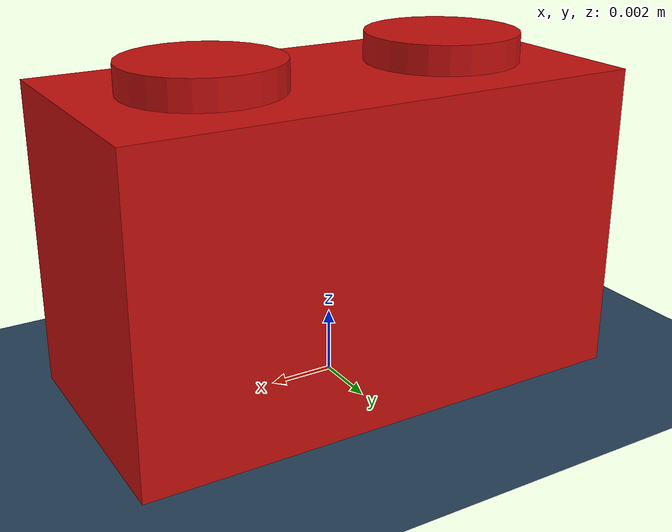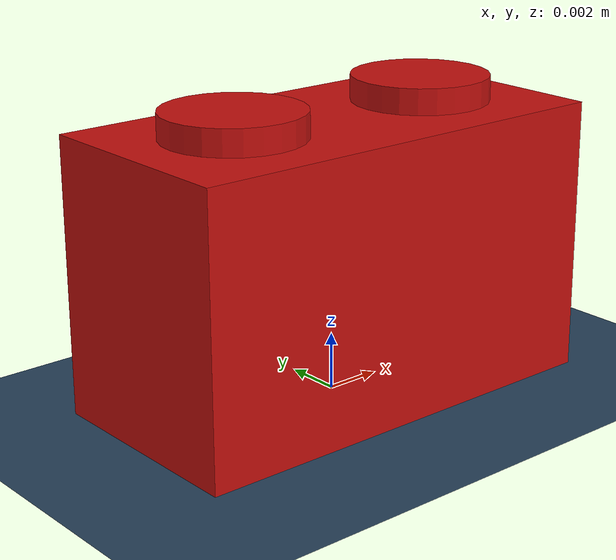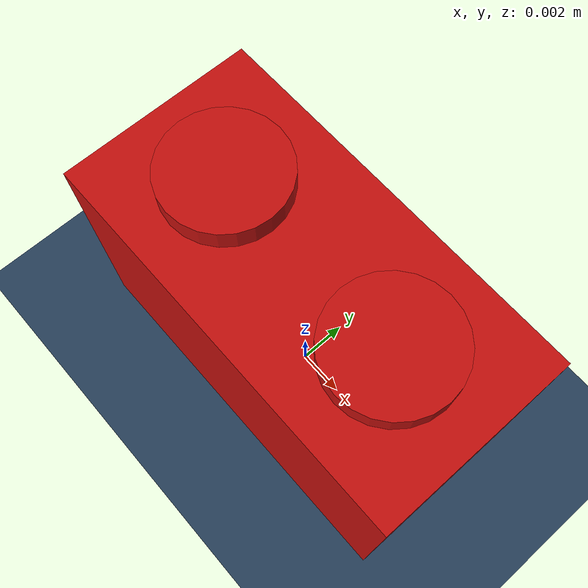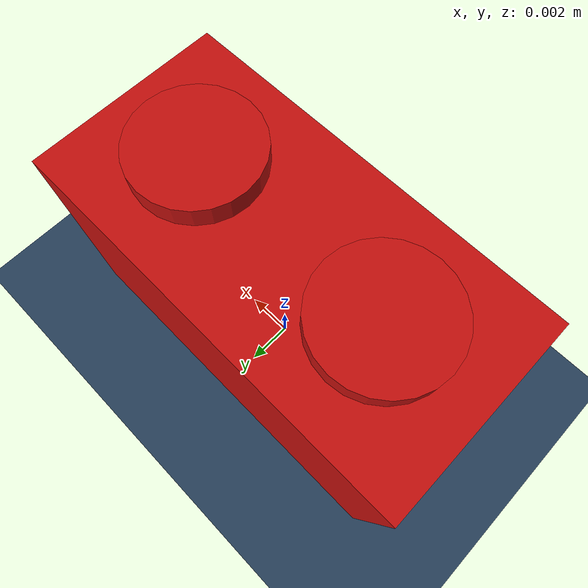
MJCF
<mujoco model="lego_brick_2x1_scene">
  <!--
    Standalone viewer scene for the lego_brick_2x1 asset.
    Quick look:
      python -m mujoco.viewer --mjcf assets/lego/scene_lego_brick_2x1.xml
  -->
  <option timestep="0.002" gravity="0 0 -9.81"/>

  <visual>
    <headlight ambient="0.4 0.4 0.4" diffuse="0.6 0.6 0.6" specular="0.1 0.1 0.1"/>
  </visual>

  <asset>
    <texture type="skybox" builtin="gradient" rgb1="0.3 0.5 0.7" rgb2="0 0 0" width="512" height="512"/>
    <texture type="2d" name="groundplane" builtin="checker" mark="edge" rgb1="0.2 0.3 0.4" rgb2="0.1 0.2 0.3"
              markrgb="0.8 0.8 0.8" width="300" height="300"/>
    <material name="groundplane" texture="groundplane" texuniform="true" texrepeat="5 5" reflectance="0.1"/>
  </asset>

  <worldbody>
    <light pos="0.2 0.2 0.3" dir="-0.5 -0.5 -1" diffuse="0.8 0.8 0.8"/>
    <geom name="floor" type="plane" size="0.5 0.5 0.05" material="groundplane"/>
  </worldbody>

  <include file="lego_brick_2x1.xml"/>

  <keyframe>
    <key name="dropped" qpos="0 0 0.05 1 0 0 0"/>
  </keyframe>
</mujoco>

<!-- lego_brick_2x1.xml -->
<mujoco model="lego_brick_2x1">
  <compiler angle="radian"/>

  <default>
    <default class="lego_brick_2x1">
      <!-- density is tuned down from ABS's real ~1050 kg/m3 so the solid
           primitive body (no hollow underside) lands near a real piece's mass -->
      <geom type="box" material="lego_red" density="500" friction="0.9 0.02 0.001"/>
      <default class="lego_brick_2x1/stud">
        <geom type="cylinder"/>
      </default>
    </default>
  </default>

  <asset>
    <material name="lego_red" rgba="0.77 0.06 0.05 1"/>
  </asset>

  <worldbody>
    <body name="lego_brick_2x1" childclass="lego_brick_2x1">
      <freejoint name="lego_brick_2x1_freejoint"/>

      <!-- brick body: 2 studs long (x) x 1 studs wide (y) x 9.6mm tall (z) -->
      <!-- mass/inertia are left to MuJoCo, computed from geom volume x density above -->
      <geom name="lego_brick_2x1_body" size="0.0079 0.0039 0.0048" pos="0 0 0.0048"/>

      <geom class="lego_brick_2x1/stud" name="lego_brick_2x1_stud_00" size="0.0024 0.00085" pos="-0.004 0 0.00965"/>
      <geom class="lego_brick_2x1/stud" name="lego_brick_2x1_stud_10" size="0.0024 0.00085" pos="0.004 0 0.00965"/>
    </body>
  </worldbody>
</mujoco>
